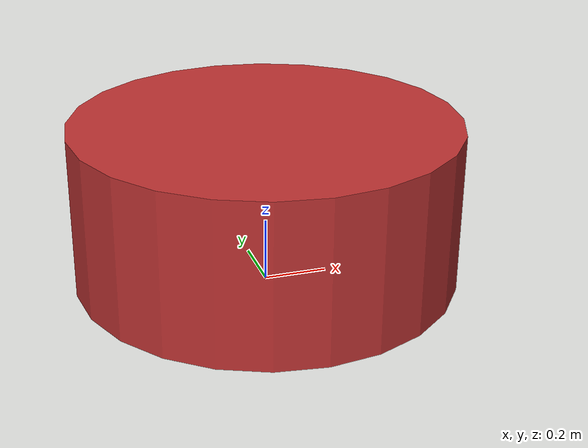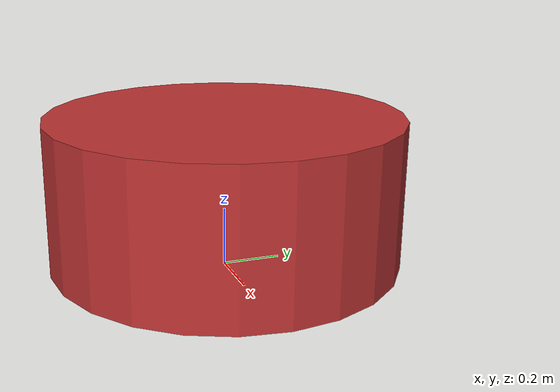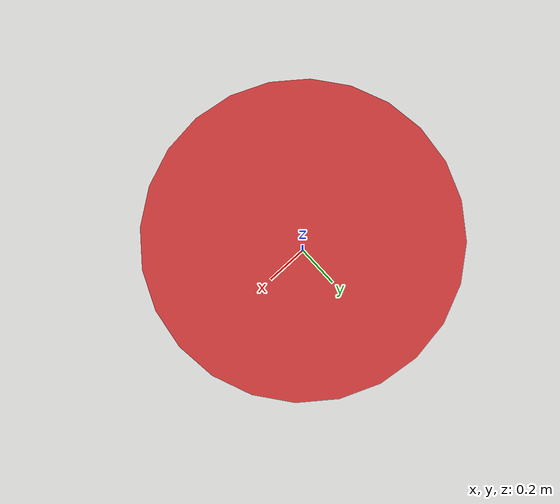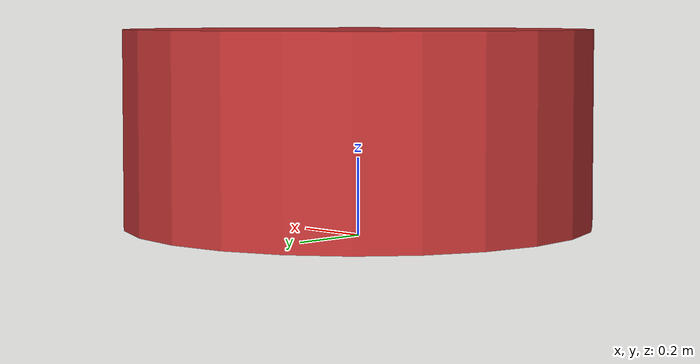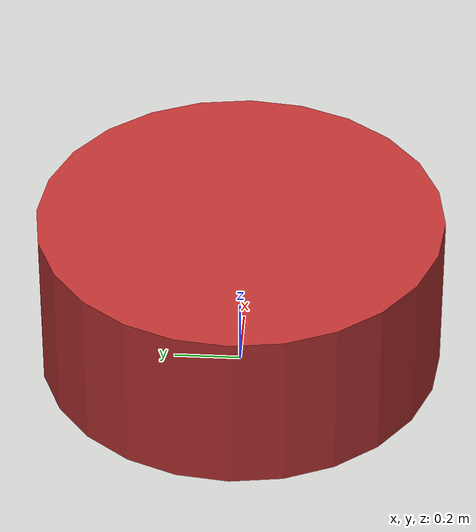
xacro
<?xml version="1.0"?>
<robot name="arm" xmlns:xacro="http://www.ros.org/wiki/xacro">

    <xacro:include filename="$(find mbot_description)/urdf/person_original/mbot_base_gazebo_people10.xacro" />

    <mbot_base_gazebo/>

</robot>

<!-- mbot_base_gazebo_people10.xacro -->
<robot name="mbot" xmlns:xacro="http://www.ros.org/wiki/xacro">

    <!-- PROPERTY LIST -->
    <xacro:property name="M_PI" value="3.1415926"/>
    <xacro:property name="base_mass"   value="100" />
    <xacro:property name="base_radius" value="0.60"/>
    <xacro:property name="base_length" value="0.5"/>

    <xacro:property name="wheel_mass"   value="2" />
    <xacro:property name="wheel_radius" value="0.06"/>
    <xacro:property name="wheel_length" value="0.025"/>
    <xacro:property name="wheel_joint_y" value="0.19"/>
    <xacro:property name="wheel_joint_z" value="0.22"/>

    <xacro:property name="caster_mass"    value="0.5" />
    <xacro:property name="caster_radius"  value="0.015"/> <!-- wheel_radius - ( base_length/2 - wheel_joint_z) -->
    <xacro:property name="caster_joint_x" value="0.18"/>

    <!-- Defining the colors used in this robot -->
    <material name="yellow">
        <color rgba="1 0.4 0 1"/>
    </material>
    <material name="black">
        <color rgba="0 0 0 0.95"/>
    </material>
    <material name="gray">
        <color rgba="0.75 0.75 0.75 1"/>
    </material>
    <material name="red">
        <color rgba="0.75 0.2 0.2 1"/>
    </material>

    <!-- Macro for inertia matrix -->
    <xacro:macro name="sphere_inertial_matrix" params="m r">
        <inertial>
            <mass value="${m}" />
            <inertia ixx="${2*m*r*r/5}" ixy="0" ixz="0"
                iyy="${2*m*r*r/5}" iyz="0"
                izz="${2*m*r*r/5}" />
        </inertial>
    </xacro:macro>

    <xacro:macro name="cylinder_inertial_matrix" params="m r h">
        <inertial>
            <mass value="${m}" />
            <inertia ixx="${m*(3*r*r+h*h)/12}" ixy = "0" ixz = "0"
                iyy="${m*(3*r*r+h*h)/12}" iyz = "0"
                izz="${m*r*r/2}" />
        </inertial>
    </xacro:macro>

    <xacro:macro name="mbot_base_gazebo">
        <link name="base_footprint">
            <visual>
                <origin xyz="0 0 0" rpy="0 0 0" />
                <geometry>
                    <box size="0.001 0.001 0.001" />
                </geometry>
            </visual>
        </link>
        <gazebo reference="base_footprint">
            <turnGravityOff>false</turnGravityOff>
        </gazebo>

        <joint name="base_footprint_joint" type="fixed">
            <origin xyz="0 0 ${base_length/2 + caster_radius*2}" rpy="0 0 0" />
            <parent link="base_footprint"/>
            <child link="base_link" />
        </joint>

        <link name="base_link">
            <visual>
                <origin xyz=" 0 0 0" rpy="0 0 0" />
                <geometry>
                    <cylinder length="${base_length}" radius="${base_radius}"/>
                </geometry>
                <material name="red" />
            </visual>
            <collision>
                <origin xyz=" 0 0 0" rpy="0 0 0" />
                <geometry>
                    <cylinder length="${base_length}" radius="${base_radius}"/>
                </geometry>
            </collision>
            <xacro:cylinder_inertial_matrix  m="${base_mass}" r="${base_radius}" h="${base_length}" />
        </link>

        <gazebo reference="base_link">
            <material>Gazebo/Pink</material>
        </gazebo>

        <!-- controller -->
        <gazebo>
            <plugin name="differential_drive_controller"
                    filename="libgazebo_ros_diff_drive.so">
                <rosDebugLevel>Debug</rosDebugLevel>
                <publishWheelTF>true</publishWheelTF>
                <robotNamespace>/people10_robot</robotNamespace>
                <publishTf>1</publishTf>
                <publishWheelJointState>true</publishWheelJointState>
                <alwaysOn>true</alwaysOn>
                <updateRate>100.0</updateRate>
                <legacyMode>true</legacyMode>
                <leftJoint>left_wheel_joint</leftJoint>
                <rightJoint>right_wheel_joint</rightJoint>
                <wheelSeparation>${wheel_joint_y*2}</wheelSeparation>
                <wheelDiameter>${2*wheel_radius}</wheelDiameter>
                <broadcastTF>1</broadcastTF>
                <wheelTorque>30</wheelTorque>
                <wheelAcceleration>1.8</wheelAcceleration>
                <commandTopic>cmd_vel</commandTopic>
                <odometryFrame>odom</odometryFrame>
                <odometryTopic>odom</odometryTopic>
                <robotBaseFrame>base_footprint</robotBaseFrame>
            </plugin>
        </gazebo>
    </xacro:macro>

</robot>
